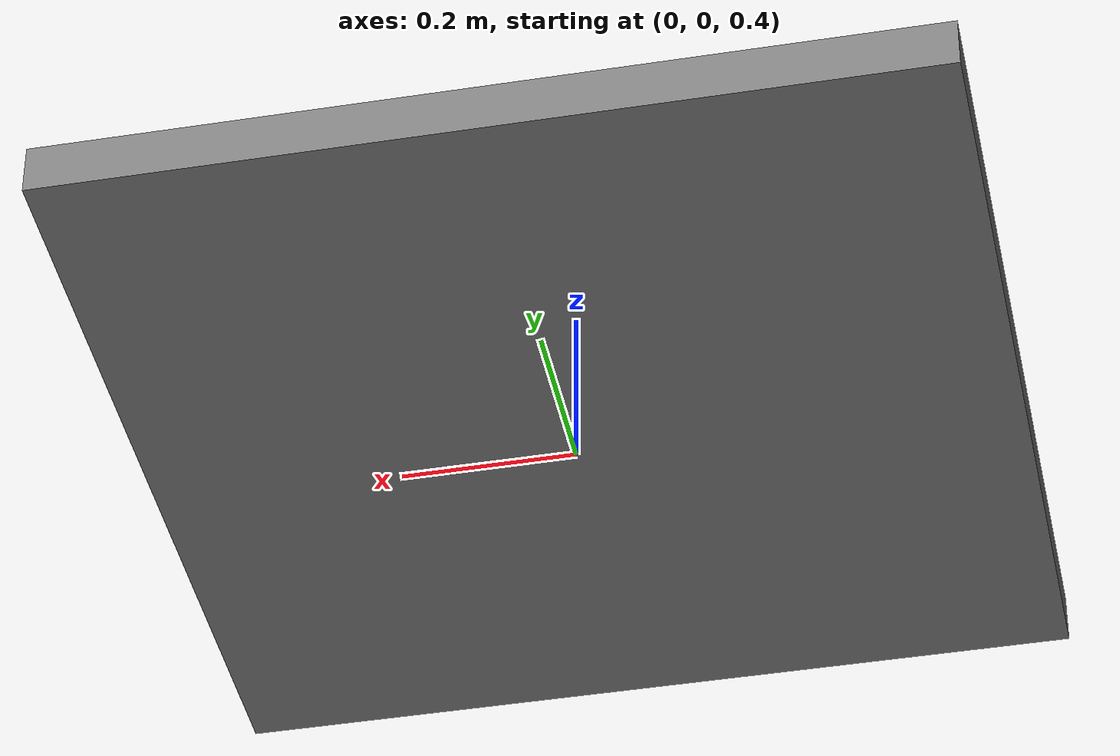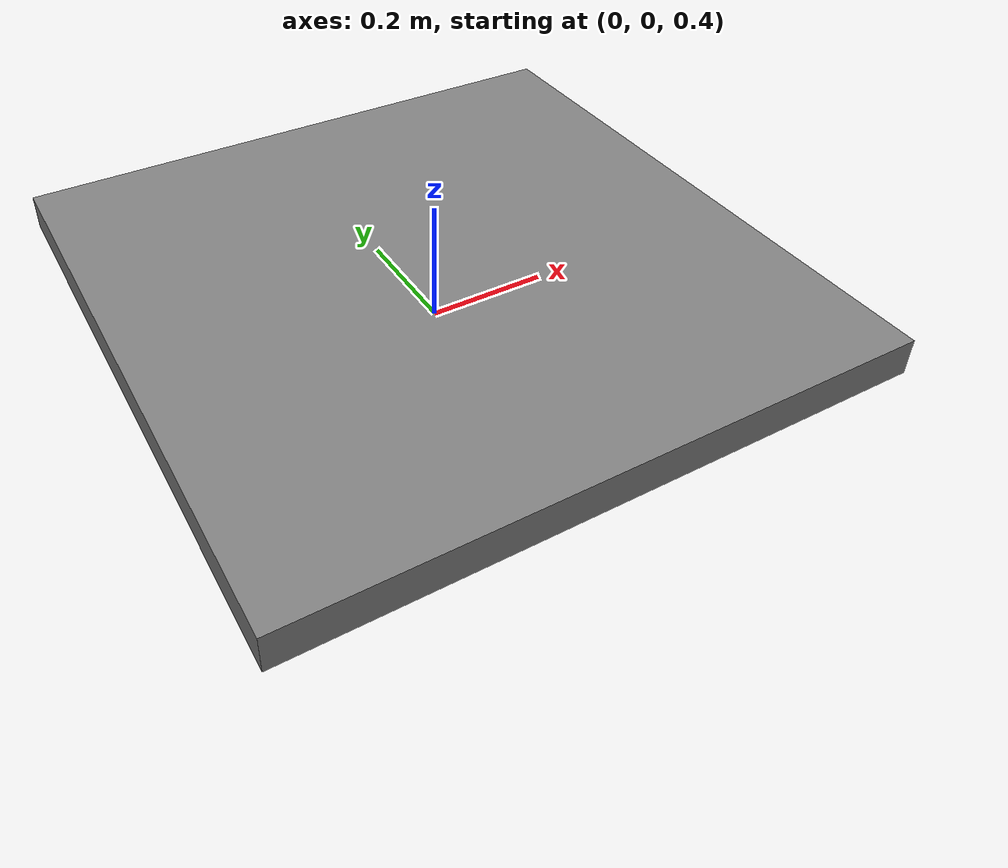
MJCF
<mujoco model="ur5">
    <compiler angle="radian" meshdir="collision" />
    <worldbody>
        <geom type="box" size="0.5 0.5 0.03" pos="0 0 0.47"/>
        <body name="base_link" pos="0 0 0.5">
            <body name="shoulder_link" pos="0 0 0.089159">
                <inertial pos="0 0 0" mass="3.7" diaginertia="0.0102675 0.0102675 0.00666" />
                <joint name="shoulder_pan_joint" pos="0 0 0" axis="0 0 1" limited="true" range="-3.14159 3.14159" />
                <body name="upper_arm_link" pos="0 0.13585 0" quat="0.707107 0 0.707107 0">
                    <inertial pos="0 0 0.28" mass="8.393" diaginertia="0.226891 0.226891 0.0151074" />
                    <joint name="shoulder_lift_joint" pos="0 0 0" axis="0 1 0" limited="true" range="-3.14159 3.14159" />
                    <body name="forearm_link" pos="0 -0.1197 0.425">
                        <inertial pos="0 0 0.196125" mass="2.275" diaginertia="0.0312168 0.0312168 0.004095" />
                        <joint name="elbow_joint" pos="0 0 0" axis="0 1 0" limited="true" range="-3.14159 3.14159" />
                        <body name="wrist_1_link" pos="0 0 0.39225" quat="0.707107 0 0.707107 0">
                            <inertial pos="0 0.093 0" mass="1.219" diaginertia="0.0025599 0.0025599 0.0021942" />
                            <joint name="wrist_1_joint" pos="0 0 0" axis="0 1 0" limited="true" range="-3.14159 3.14159" />
                            <body name="wrist_2_link" pos="0 0.093 0">
                                <inertial pos="0 0 0.09465" mass="1.219" diaginertia="0.0025599 0.0025599 0.0021942" />
                                <joint name="wrist_2_joint" pos="0 0 0" axis="0 0 1" limited="true" range="-3.14159 3.14159" />
                                <body name="wrist_3_link" pos="0 0 0.09465">
                                    <inertial pos="0 0.06505 0" quat="1.73123e-12 0.707107 -0.707107 1.73123e-12"
                                            mass="0.1879" diaginertia="0.000132117 8.46959e-05 8.46959e-05" />
                                    <joint name="wrist_3_joint" pos="0 0 0" axis="0 1 0" limited="true" range="-3.14159 3.14159" />
                                </body>
                            </body>
                        </body>
                    </body>
                </body>
            </body>
        </body>
    </worldbody>
</mujoco>
